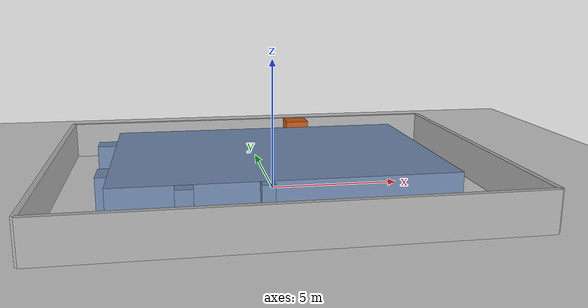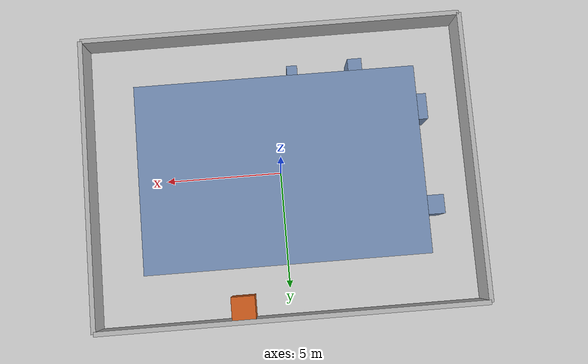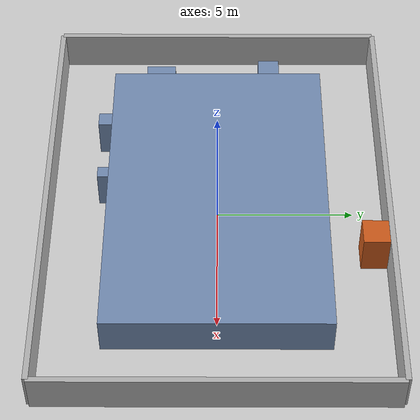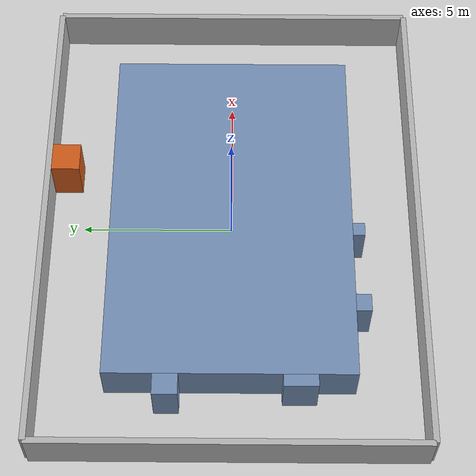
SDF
<?xml version="1.0"?>
<sdf version="1.6">

  <world name="m3_2_slam_world">

    <!-- ========== 0. Gazebo 真实位姿发布插件 ========== -->
    <plugin name="gazebo_ros_state" filename="libgazebo_ros_state.so">
      <ros>
        <namespace>/gazebo</namespace>
      </ros>
      <update_rate>20.0</update_rate>
    </plugin>

    <!-- ========== 1. 物理环境 ========== -->
    <physics name="default_physics" type="ode">
      <max_step_size>0.001</max_step_size>
      <real_time_update_rate>1000</real_time_update_rate>
      <real_time_factor>1.0</real_time_factor>
    </physics>

    <gravity>0 0 -9.81</gravity>

    <include>
      <uri>model://sun</uri>
    </include>

    <include>
      <uri>model://ground_plane</uri>
    </include>

    <!-- ========== 2. 四面外围墙 ========== -->

    <!-- 南墙 -->
    <model name="south_wall">
      <static>true</static>
      <pose>0 -6.2 0.75 0 0 0</pose>
      <link name="link">
        <collision name="collision">
          <geometry>
            <box><size>16.4 0.2 1.5</size></box>
          </geometry>
        </collision>
        <visual name="visual">
          <geometry>
            <box><size>16.4 0.2 1.5</size></box>
          </geometry>
          <material>
            <ambient>0.7 0.7 0.7 1</ambient>
            <diffuse>0.7 0.7 0.7 1</diffuse>
          </material>
        </visual>
      </link>
    </model>

    <!-- 北墙 -->
    <model name="north_wall">
      <static>true</static>
      <pose>0 6.2 0.75 0 0 0</pose>
      <link name="link">
        <collision name="collision">
          <geometry>
            <box><size>16.4 0.2 1.5</size></box>
          </geometry>
        </collision>
        <visual name="visual">
          <geometry>
            <box><size>16.4 0.2 1.5</size></box>
          </geometry>
          <material>
            <ambient>0.7 0.7 0.7 1</ambient>
            <diffuse>0.7 0.7 0.7 1</diffuse>
          </material>
        </visual>
      </link>
    </model>

    <!-- 西墙 -->
    <model name="west_wall">
      <static>true</static>
      <pose>-8.2 0 0.75 0 0 0</pose>
      <link name="link">
        <collision name="collision">
          <geometry>
            <box><size>0.2 12.4 1.5</size></box>
          </geometry>
        </collision>
        <visual name="visual">
          <geometry>
            <box><size>0.2 12.4 1.5</size></box>
          </geometry>
          <material>
            <ambient>0.7 0.7 0.7 1</ambient>
            <diffuse>0.7 0.7 0.7 1</diffuse>
          </material>
        </visual>
      </link>
    </model>

    <!-- 东墙 -->
    <model name="east_wall">
      <static>true</static>
      <pose>8.2 0 0.75 0 0 0</pose>
      <link name="link">
        <collision name="collision">
          <geometry>
            <box><size>0.2 12.4 1.5</size></box>
          </geometry>
        </collision>
        <visual name="visual">
          <geometry>
            <box><size>0.2 12.4 1.5</size></box>
          </geometry>
          <material>
            <ambient>0.7 0.7 0.7 1</ambient>
            <diffuse>0.7 0.7 0.7 1</diffuse>
          </material>
        </visual>
      </link>
    </model>

    <!-- ========== 3. 中央障碍区 ========== -->

    <model name="central_block">
      <static>true</static>
      <pose>0 0 0.75 0 0 0</pose>
      <link name="link">
        <collision name="collision">
          <geometry>
            <box><size>12 8 1.5</size></box>
          </geometry>
        </collision>
        <visual name="visual">
          <geometry>
            <box><size>12 8 1.5</size></box>
          </geometry>
          <material>
            <ambient>0.45 0.55 0.7 1</ambient>
            <diffuse>0.45 0.55 0.7 1</diffuse>
          </material>
        </visual>
      </link>
    </model>

    <!-- ========== 4. 自定难点：窄通道 ========== -->

    <!-- 北侧通道从约 2.1 m 局部收窄到 1.15 m -->
    <model name="narrow_passage_obstacle">
      <static>true</static>
      <pose>2 5.625 0.75 0 0 0</pose>
      <link name="link">
        <collision name="collision">
          <geometry>
            <box><size>1.0 0.95 1.5</size></box>
          </geometry>
        </collision>
        <visual name="visual">
          <geometry>
            <box><size>1.0 0.95 1.5</size></box>
          </geometry>
          <material>
            <ambient>0.8 0.35 0.1 1</ambient>
            <diffuse>0.8 0.35 0.1 1</diffuse>
          </material>
        </visual>
      </link>
    </model>

    <!-- ========== 5. 增强难点：不对称几何特征 ========== -->

    <!-- 西侧特征 A：短而宽的突出墙 -->
    <model name="feature_west_upper">
      <static>true</static>
      <pose>-6.35 2.0 0.75 0 0 0</pose>
      <link name="link">
        <collision name="collision">
          <geometry>
            <box><size>0.7 0.8 1.5</size></box>
          </geometry>
        </collision>
        <visual name="visual">
          <geometry>
            <box><size>0.7 0.8 1.5</size></box>
          </geometry>
          <material>
            <ambient>0.45 0.55 0.7 1</ambient>
            <diffuse>0.45 0.55 0.7 1</diffuse>
          </material>
        </visual>
      </link>
    </model>

    <!-- 西侧特征 B：细长突出墙 -->
    <model name="feature_west_lower">
      <static>true</static>
      <pose>-6.2 -2.2 0.75 0 0 0</pose>
      <link name="link">
        <collision name="collision">
          <geometry>
            <box><size>0.4 1.1 1.5</size></box>
          </geometry>
        </collision>
        <visual name="visual">
          <geometry>
            <box><size>0.4 1.1 1.5</size></box>
          </geometry>
          <material>
            <ambient>0.45 0.55 0.7 1</ambient>
            <diffuse>0.45 0.55 0.7 1</diffuse>
          </material>
        </visual>
      </link>
    </model>

    <!-- 南侧特征 A -->
    <model name="feature_south_left">
      <static>true</static>
      <pose>-3.5 -4.25 0.75 0 0 0</pose>
      <link name="link">
        <collision name="collision">
          <geometry>
            <box><size>0.6 0.5 1.5</size></box>
          </geometry>
        </collision>
        <visual name="visual">
          <geometry>
            <box><size>0.6 0.5 1.5</size></box>
          </geometry>
          <material>
            <ambient>0.45 0.55 0.7 1</ambient>
            <diffuse>0.45 0.55 0.7 1</diffuse>
          </material>
        </visual>
      </link>
    </model>

    <!-- 南侧特征 B -->
    <model name="feature_south_right">
      <static>true</static>
      <pose>-0.8 -4.2 0.75 0 0 0</pose>
      <link name="link">
        <collision name="collision">
          <geometry>
            <box><size>0.45 0.4 1.5</size></box>
          </geometry>
        </collision>
        <visual name="visual">
          <geometry>
            <box><size>0.45 0.4 1.5</size></box>
          </geometry>
          <material>
            <ambient>0.45 0.55 0.7 1</ambient>
            <diffuse>0.45 0.55 0.7 1</diffuse>
          </material>
        </visual>
      </link>
    </model>

  </world>

</sdf>
